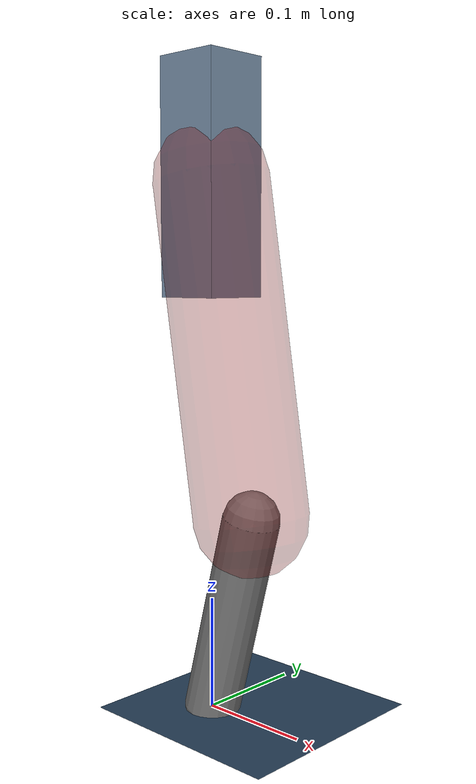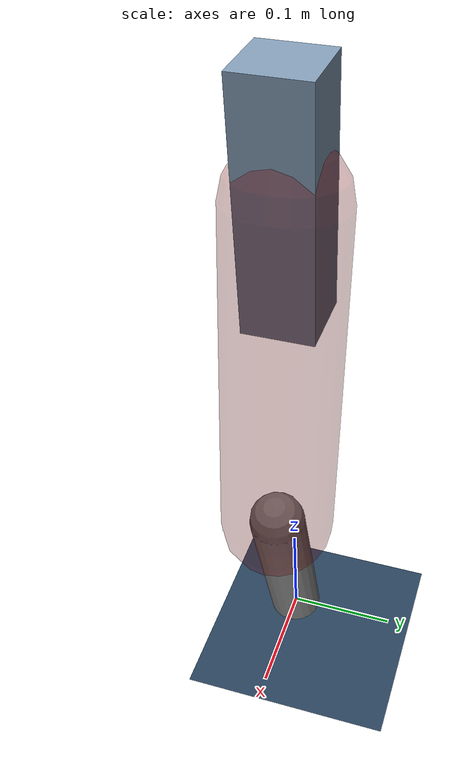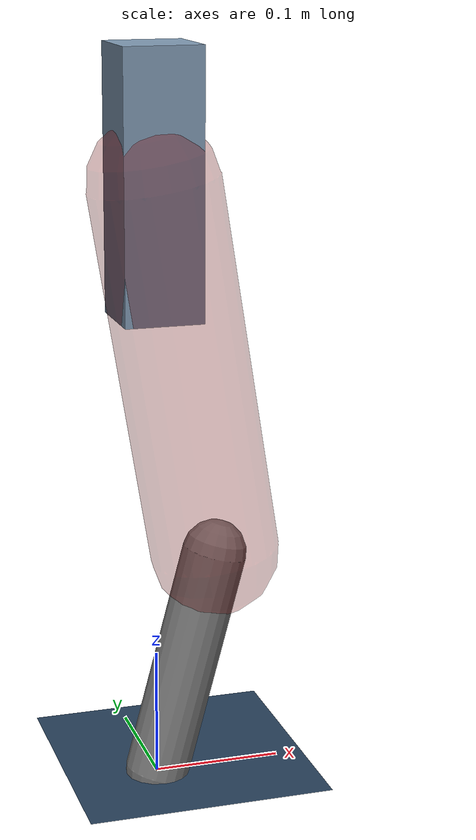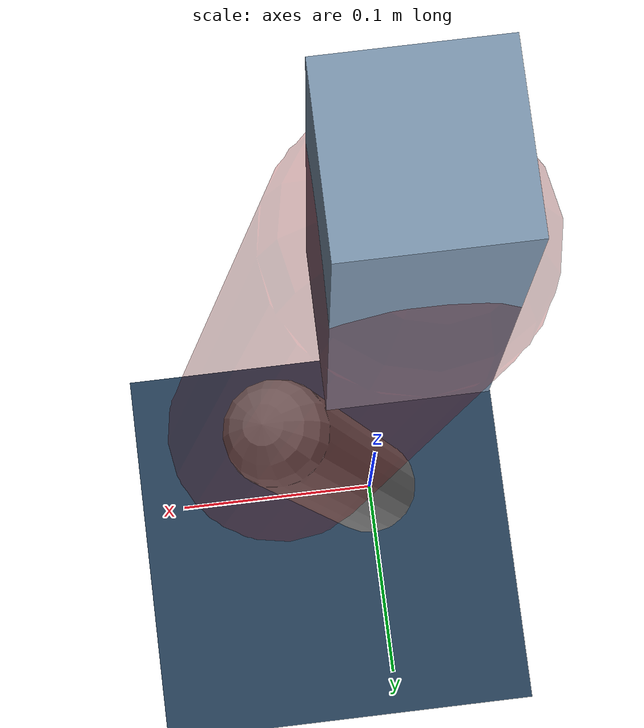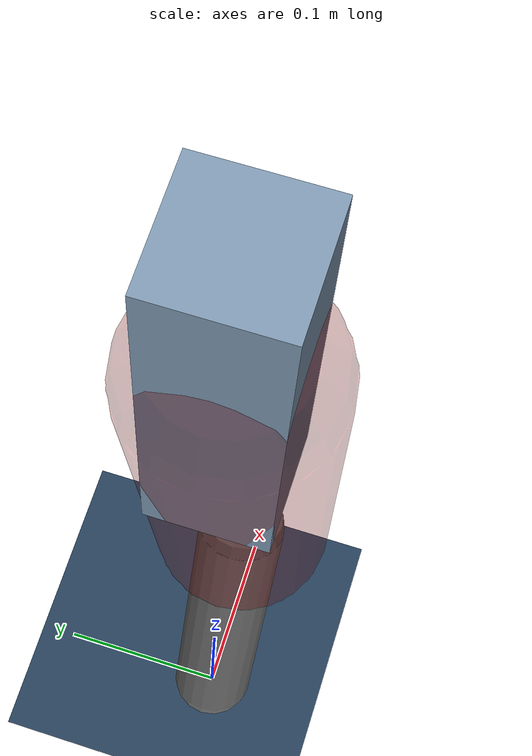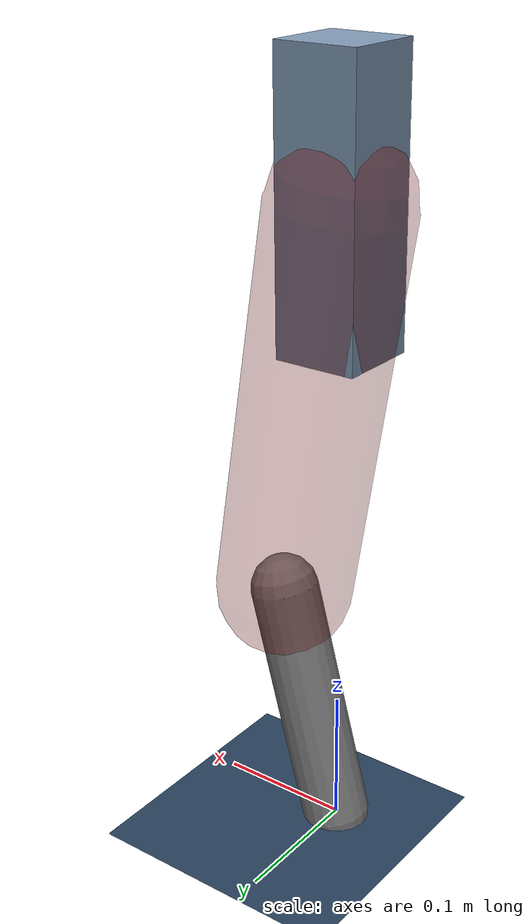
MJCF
<mujoco model="Hopper2D">
	<compiler inertiafromgeom="true" angle="radian" />
	<option timestep="0.001" integrator="implicit" cone="elliptic" solver="Newton" tolerance="1e-10" />

	<default>
		<geom contype="1" conaffinity="1" condim="3" friction="2 0.005 0.0001" solref="0.005 1" />
		<joint limited="true" damping="0.1" />
	</default>

	<asset>
		<texture name="skybox" type="skybox" builtin="gradient" rgb1=".4 .6 .8" rgb2="0 0 0" width="800" height="800" />
		<texture name="grid" type="2d" builtin="checker" rgb1=".1 .2 .3" rgb2=".2 .3 .4" width="300" height="300" mark="edge" markrgb=".2 .3 .4" />
		<material name="ground" texture="grid" texrepeat="1 1" texuniform="true" reflectance="0.1" />
		<material name="leg" rgba="0.5 0.6 0.7 1" />
	</asset>

	<worldbody>

		<geom name="floor" type="plane" size="5 5 0.25" material="ground" />

		<light directional="false" diffuse="0.8 0.8 0.8" specular="0.3 0.3 0.3" pos="0 0 2" dir="0 0 -1" />
		<light mode="targetbodycom" target="base" directional="false" diffuse="0.8 0.8 0.8" specular="0.3 0.3 0.3" pos="0 0 2" dir="0 0 -1" />

		<camera name="fixed" pos="0 -2 1" xyaxes="1 0 0 0 0 1" />
		<camera name="tracking" mode="trackcom" pos="0 -3 1" />

		<body name="root" pos="0 0 0.46785164945806446">
			<joint name="slide_x" type="slide" axis="1 0 0" range="-100 100" />
			<joint name="slide_z" type="slide" axis="0 0 1" range="0 10" />

			<body name="base" pos="0 0 0">
				<geom name="torso" type="box" size="0.03 0.03 0.1" mass="2.35" material="leg" />

				<body name="link1" pos="0 0 0" euler="0 1.4076962583757984 0">
					<joint type="hinge" axis="0 -1 0" pos="0 0 0" name="hinge1" limited="true" range="-3.14 3.14" stiffness="0" damping="0.1" />
					<geom name="thigh" type="capsule" fromto="0 0 0 0.29172119391502416 0 0" size="0.05" rgba="0.5 0 0 0.3" mass="0.9664472235705652" />

					<body name="link2" pos="0.29172119391502416 0 0" euler="0 0.42042446972091535 0">
						<joint type="hinge" axis="0 -1 0" pos="0 0 0" name="hinge2" limited="true" range="-3.14 3.14" stiffness="0" damping="0.1" />
						<geom name="shank" type="capsule" fromto="0 0 0 0.18613045554304028 0 0" size="0.025" mass="0.3891174099887363" />

					</body>
				</body>
			</body>
		</body>
	</worldbody>

	<actuator>
		<motor name="torque1" joint="hinge1" ctrlrange="-67.2423402427406 67.2423402427406" ctrllimited="true" gear="1" />
		<motor name="torque2" joint="hinge2" ctrlrange="-81.75317584900424 81.75317584900424" ctrllimited="true" gear="1" />
	</actuator>
</mujoco>
